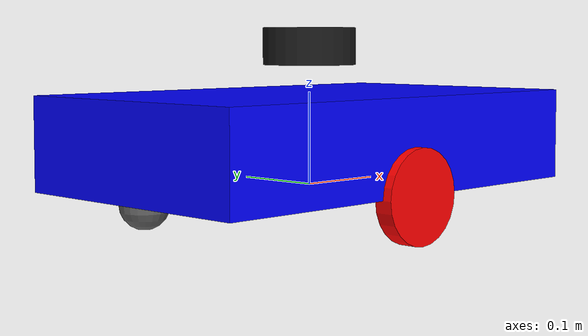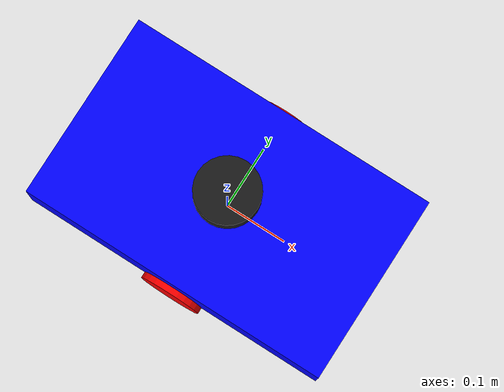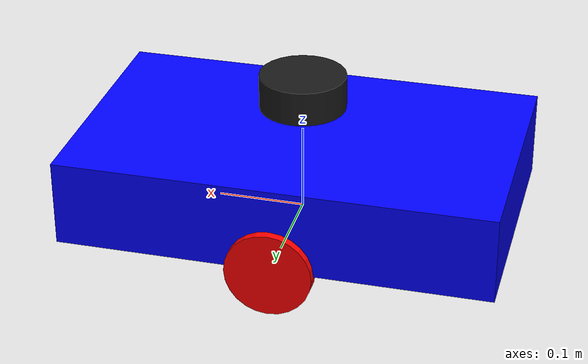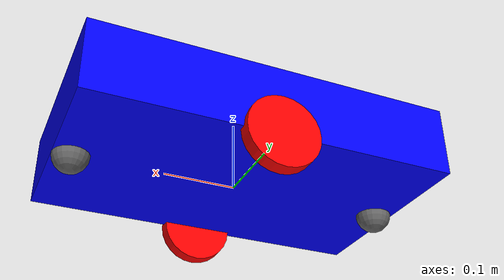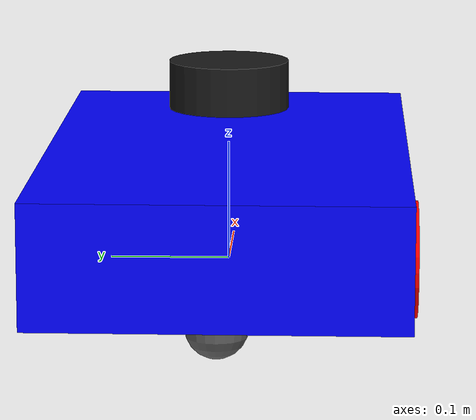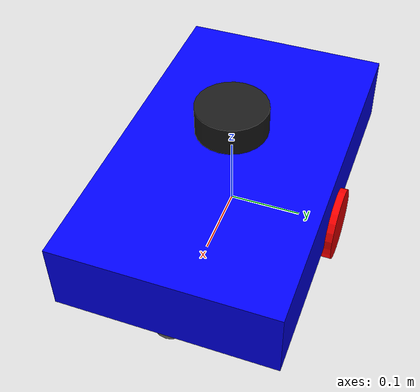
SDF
<?xml version="1.0" ?>
<sdf version="1.10">
  <model name="my_robot">
    <static>false</static>

    <!-- Base Footprint -->
    <link name="base_footprint">
      <pose>0 0 0 0 0 0</pose>
    </link>

    <!-- Base Link -->
    <link name="base_link">
      <pose>0 0 0.05 0 0 0</pose>
      <inertial>
        <mass>6.0</mass>
        <inertia>
          <ixx>0.05</ixx>
          <iyy>0.05</iyy>
          <izz>0.05</izz>
          <ixy>0.0</ixy>
          <ixz>0.0</ixz>
          <iyz>0.0</iyz>
        </inertia>
      </inertial>
      <collision name="collision">
        <geometry>
          <box><size>0.5 0.3 0.1</size></box>
        </geometry>
      </collision>
      <visual name="visual">
        <geometry>
          <box><size>0.5 0.3 0.1</size></box>
        </geometry>
        <material>
            <ambient>0.0 0.0 1.0 1</ambient>
            <diffuse>0.0 0.0 1.0 1</diffuse>
            <specular>0.0 0.0 1.0 1</specular>
        </material>
      </visual>

    <sensor name="imu_sensor" type="imu">
        <always_on>1</always_on>
        <update_rate>50</update_rate>
        <imu>
                    <enable_orientation>0</enable_orientation>
                    <angular_velocity>
                        <x>
                            <noise type="gaussian">
                                <mean>0</mean>
                                <stddev>0.009</stddev>
                                <bias_mean>0.00075</bias_mean>
                                <bias_stddev>0.005</bias_stddev>
                                <dynamic_bias_stddev>0.00002</dynamic_bias_stddev>
                                <dynamic_bias_correlation_time>400.0</dynamic_bias_correlation_time>
                                <precision>0.00025</precision>
                            </noise>
                        </x>
                        <y>
                            <noise type="gaussian">
                                <mean>0</mean>
                                <stddev>0.009</stddev>
                                <bias_mean>0.00075</bias_mean>
                                <bias_stddev>0.005</bias_stddev>
                                <dynamic_bias_stddev>0.00002</dynamic_bias_stddev>
                                <dynamic_bias_correlation_time>400.0</dynamic_bias_correlation_time>
                                <precision>0.00025</precision>
                            </noise>
                        </y>
                        <z>
                            <noise type="gaussian">
                                <mean>0</mean>
                                <stddev>0.009</stddev>
                                <bias_mean>0.00075</bias_mean>
                                <bias_stddev>0.005</bias_stddev>
                                <dynamic_bias_stddev>0.00002</dynamic_bias_stddev>
                                <dynamic_bias_correlation_time>400.0</dynamic_bias_correlation_time>
                                <precision>0.00025</precision>
                            </noise>
                        </z>
                    </angular_velocity>
                    <linear_acceleration>
                        <x>
                            <noise type="gaussian">
                                <mean>0</mean>
                                <stddev>0.021</stddev>
                                <bias_mean>0.05</bias_mean>
                                <bias_stddev>0.0075</bias_stddev>
                                <dynamic_bias_stddev>0.000375</dynamic_bias_stddev>
                                <dynamic_bias_correlation_time>175.0</dynamic_bias_correlation_time>
                                <precision>0.005</precision>
                            </noise>
                        </x>
                        <y>
                            <noise type="gaussian">
                                <mean>0</mean>
                                <stddev>0.021</stddev>
                                <bias_mean>0.05</bias_mean>
                                <bias_stddev>0.0075</bias_stddev>
                                <dynamic_bias_stddev>0.000375</dynamic_bias_stddev>
                                <dynamic_bias_correlation_time>175.0</dynamic_bias_correlation_time>
                                <precision>0.005</precision>
                            </noise>
                        </y>
                        <z>
                            <noise type="gaussian">
                                <mean>0</mean>
                                <stddev>0.021</stddev>
                                <bias_mean>0.05</bias_mean>
                                <bias_stddev>0.0075</bias_stddev>
                                <dynamic_bias_stddev>0.000375</dynamic_bias_stddev>
                                <dynamic_bias_correlation_time>175.0</dynamic_bias_correlation_time>
                                <precision>0.005</precision>
                            </noise>
                        </z>
                    </linear_acceleration>
                </imu>
      </sensor>
     </link>
    <!-- Right Wheel -->
    <link name="right_wheel">
      <pose>0 -0.15 0.0 1.57 0 0</pose>
      <visual name="visual">
        <geometry>
          <cylinder>
            <radius>0.05</radius>
            <length>0.02</length>
          </cylinder>
        </geometry>
        <material>
            <ambient>1.0 0.0 0.0 1</ambient>
            <diffuse>1.0 0.0 0.0 1</diffuse>
            <specular>1.0 0.0 0.0 1</specular>
        </material>
      </visual>
      <collision name="collision">
        <geometry>
          <cylinder>
            <radius>0.05</radius>
            <length>0.02</length>
          </cylinder>
        </geometry>
      </collision>
      <inertial>
        <mass>1.0</mass>
        <inertia>
          <ixx>0.001</ixx>
          <iyy>0.001</iyy>
          <izz>0.001</izz>
          <ixy>0.0</ixy>
          <ixz>0.0</ixz>
          <iyz>0.0</iyz>
        </inertia>
      </inertial>
    </link>
    <!-- Fixed joint: base_footprint -> base_link -->
    <joint name="base_footprint_to_base_link" type="fixed">
      <parent>base_footprint</parent>
      <child>base_link</child>
      <pose>0 0 0.05 0 0 0</pose>
    </joint>

    <!-- Revolute Joint: base_link -> right_wheel -->
    <joint name="right_wheel_joint" type="revolute">
      <parent>base_link</parent>
      <child>right_wheel</child>
      <pose>0 0.15 0.05 0 0 0</pose>
      <axis>
        <xyz>0 1 0</xyz>
        <limit>
          <lower>-1000</lower>
          <upper>1000</upper>
          <effort>10</effort>
          <velocity>100</velocity>
        </limit>
        <dynamics>
          <damping>0.1</damping>
          <friction>0.0</friction>
        </dynamics>
      </axis>
    </joint>

    <!-- Left Wheel -->
    <link name="left_wheel">
      <pose>0 0.15 0.0 1.57 0 0</pose>
      <visual name="visual">
        <geometry>
          <cylinder>
            <radius>0.05</radius>
            <length>0.02</length>
          </cylinder>
        </geometry>
        <material>
            <ambient>1.0 0.0 0.0 1</ambient>
            <diffuse>1.0 0.0 0.0 1</diffuse>
            <specular>1.0 0.0 0.0 1</specular>
        </material>
      </visual>
      <collision name="collision">
        <geometry>
          <cylinder>
            <radius>0.05</radius>
            <length>0.02</length>
          </cylinder>
        </geometry>
      </collision>
      <inertial>
        <mass>1.0</mass>
        <inertia>
          <ixx>0.001</ixx>
          <iyy>0.001</iyy>
          <izz>0.001</izz>
          <ixy>0.0</ixy>
          <ixz>0.0</ixz>
          <iyz>0.0</iyz>
        </inertia>
      </inertial>
    </link>

    <!-- Revolute Joint: base_link -> left_wheel -->
    <joint name="left_wheel_joint" type="revolute">
      <parent>base_link</parent>
      <child>left_wheel</child>
      <pose>0 0.15 0.05 0 0 0</pose>
      <axis>
        <xyz>0 1 0</xyz>
        <limit>
          <lower>-1000</lower>
          <upper>1000</upper>
          <effort>10</effort>
          <velocity>100</velocity>
        </limit>
        <dynamics>
          <damping>0.1</damping>
          <friction>0.0</friction>
        </dynamics>
      </axis>
    </joint>

    <!-- Front Caster -->
    <link name="front_caster">
      <pose>0.225 0 0 0 0 0</pose>
      <visual name="visual">
        <geometry>
          <sphere><radius>0.025</radius></sphere>
        </geometry>
        <material>
          <ambient>0.4 0.4 0.4 1.0</ambient>
        </material>
      </visual>
      <collision name="collision">
        <geometry>
          <sphere><radius>0.025</radius></sphere>
        </geometry>
      </collision>
      <inertial>
        <mass>0.2</mass>
        <inertia>
          <ixx>0.0001</ixx>
          <iyy>0.0001</iyy>
          <izz>0.0001</izz>
          <ixy>0.0</ixy>
          <ixz>0.0</ixz>
          <iyz>0.0</iyz>
        </inertia>
      </inertial>
    </link>

    <!-- Rear Caster -->
    <link name="rear_caster">
      <pose>-0.225 0 0 0 0 0</pose>
      <visual name="visual">
        <geometry>
          <sphere><radius>0.025</radius></sphere>
        </geometry>
        <material>
          <ambient>0.4 0.4 0.4 1.0</ambient>
        </material>
      </visual>
      <collision name="collision">
        <geometry>
          <sphere><radius>0.025</radius></sphere>
        </geometry>
      </collision>
      <inertial>
        <mass>0.2</mass>
        <inertia>
          <ixx>0.0001</ixx>
          <iyy>0.0001</iyy>
          <izz>0.0001</izz>
          <ixy>0.0</ixy>
          <ixz>0.0</ixz>
          <iyz>0.0</iyz>
        </inertia>
      </inertial>
    </link>
<!-- Lidar Link -->
<link name="lidar_link">
  <pose>0 0 0.15 0 0 0</pose>
  <visual name="visual">
    <pose>0 0 0 0 0 0</pose>
    <geometry>
      <cylinder>
        <length>0.04</length>
        <radius>0.05</radius>
      </cylinder>
    </geometry>
    <material>
      <ambient>0.1 0.1 0.1 1.0</ambient>
    </material>
  </visual>
  <collision name="collision">
    <pose>0 0 0 0 0 0</pose>
    <geometry>
      <cylinder>
        <length>0.04</length>
        <radius>0.05</radius>
      </cylinder>
    </geometry>
  </collision>
  <inertial>
    <mass>0.05</mass>
    <pose>0 0 0 0 0 0</pose>
    <inertia>
      <ixx>0.00001</ixx>
      <iyy>0.00001</iyy>
      <izz>0.00001</izz>
      <ixy>0.0</ixy>
      <ixz>0.0</ixz>
      <iyz>0.0</iyz>
    </inertia>
  </inertial>
</link>

<!-- Fixed Joint lidar_link to base_link -->
<joint name="lidar_link_joint" type="fixed">
  <parent>base_link</parent>
  <child>lidar_link</child>
  <pose>0 0 0.15 0 0 0</pose>
</joint>

  </model>
</sdf>
